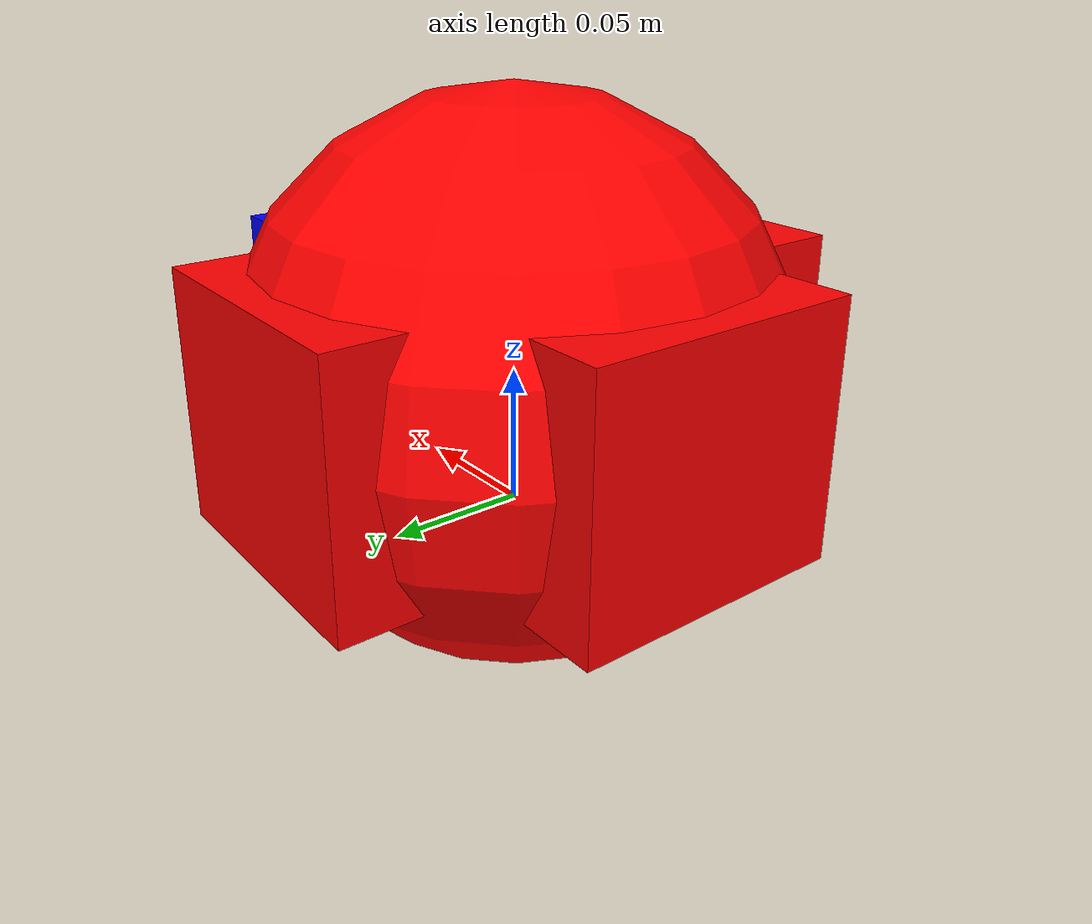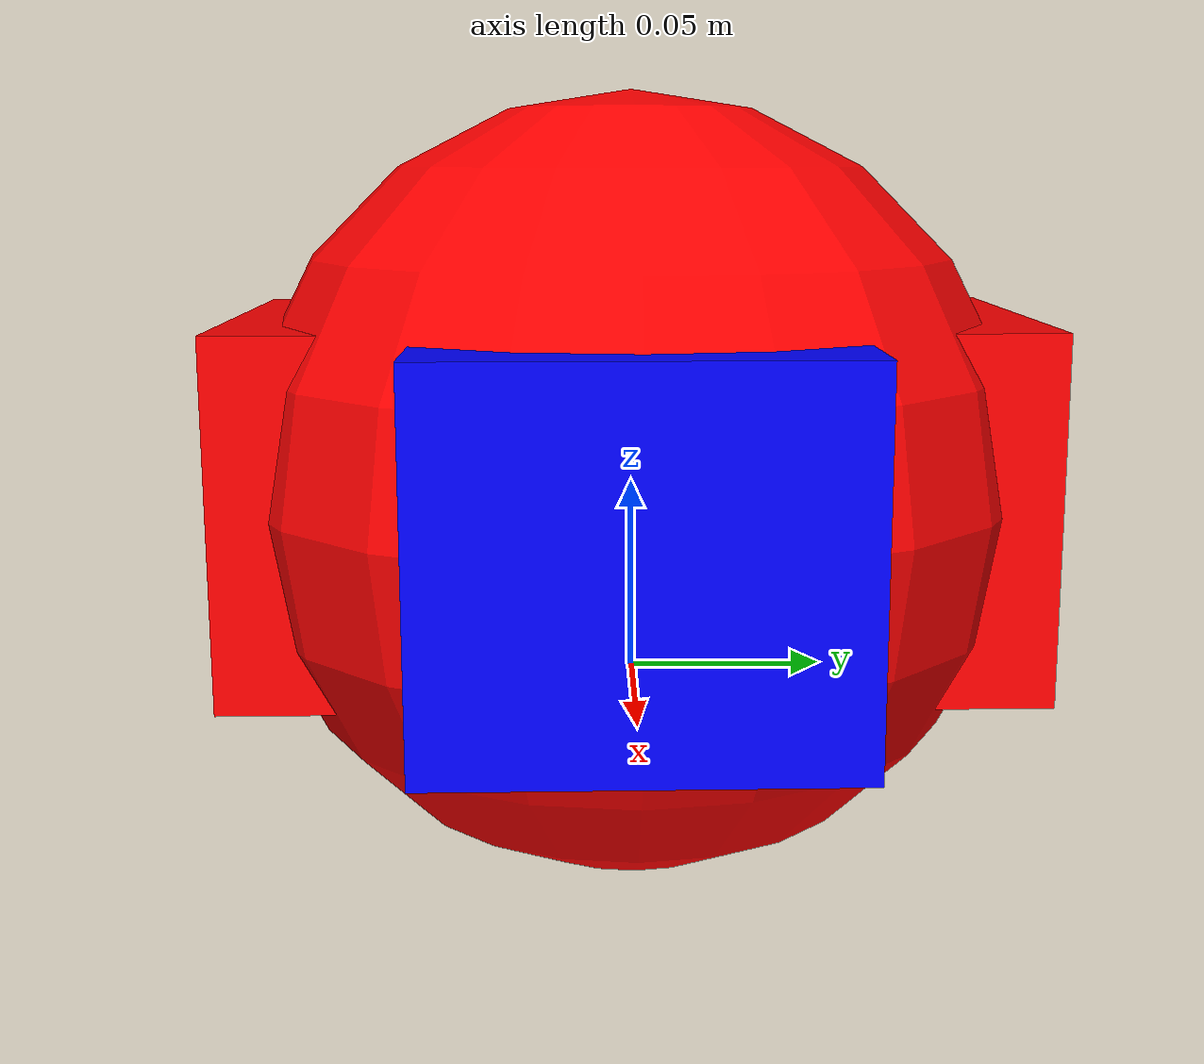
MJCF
<mujoco model="picked_Sphere">
    <worldbody>
        <body name="picked_Sphere" pos="0.0 0.0 0.0" quat="1 0 0 0">
            <geom name="picked_Sphere" pos="0 0 0.05" size="0.1" rgba="1 0 0 1.0" type="sphere" mass="0.05" friction="0.3 0.001 0.0001" priority="1"/>
            <geom pos="0.05 0 0.0485" size="0.05 0.05 0.045" rgba="0 0 1 1.0" type="box" mass="0.001"/>
            <geom pos="0 0.05 0.0485" size="0.05 0.05 0.045" rgba="1 0 0 1.0" type="box" mass="0.001"/>
            <geom pos="-0.05 0 0.0485" size="0.05 0.05 0.045" rgba="1 0 0 1.0" type="box" mass="0.001"/>
            <geom pos="0 -0.05 0.0485" size="0.05 0.05 0.045" rgba="1 0 0 1.0" type="box" mass="0.001"/>
            <joint name="picked_Sphere_joint" type="free"/>
        </body>
    </worldbody>
</mujoco>
